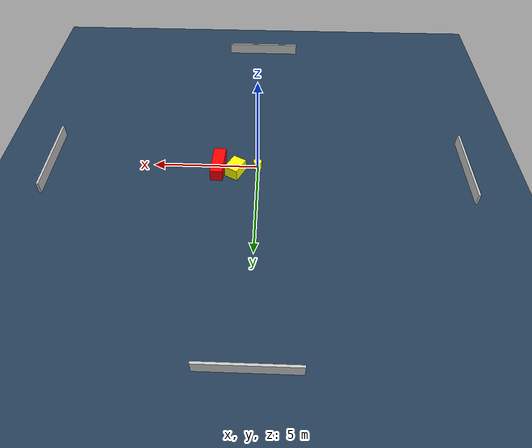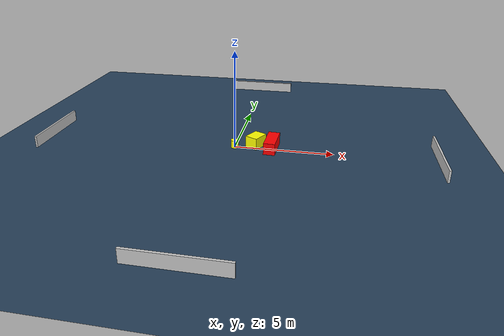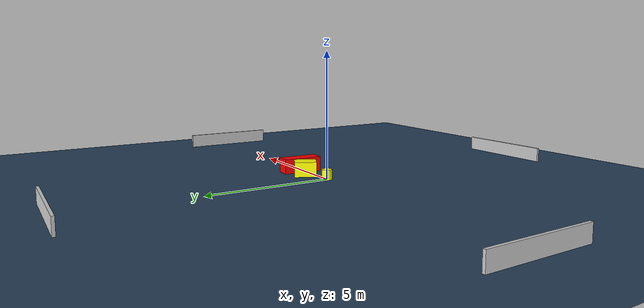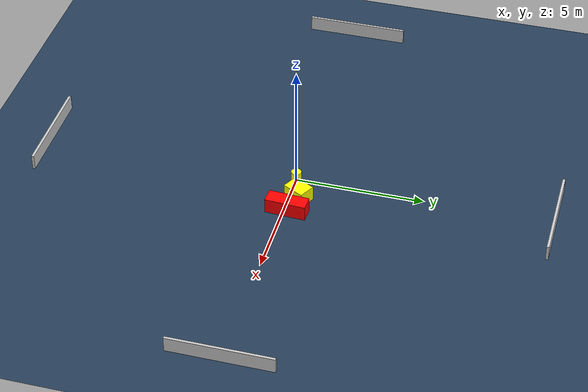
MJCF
<?xml version="1.0" ?>
<mujoco model="generated_environment">
  <option timestep="0.01" integrator="RK4" cone="elliptic"/>
  <default>
    <geom density="1"/>
  </default>
  <asset>
    <texture builtin="gradient" height="3072" name="skybox" rgb1="0.3 0.5 0.7" rgb2="0 0 0" type="skybox" width="512"/>
    <texture builtin="checker" height="300" name="groundplane" rgb1="0.2 0.3 0.4" rgb2="0.1 0.2 0.3" type="2d" width="300"/>
    <material name="groundplane" reflectance="0.2" texrepeat="5 5" texture="groundplane"/>
  </asset>
  <worldbody>
    <light dir="0 0 -1" directional="true" pos="0 0 1.5"/>
    <geom condim="3" friction="0.5 0.005 0.001" material="groundplane" name="floor" pos="0 0 0" size="0 0 0.05" type="plane"/>
    <body name="walls">
      <geom name="wall_1" condim="4" pos="-10.0 0.0 0.3" rgba="0.800000011920929 0.800000011920929 0.800000011920929 1.0" size="0.05 2.0 0.3" type="box"/>
      <geom name="wall_2" condim="4" pos="10.0 0.0 0.3" rgba="0.800000011920929 0.800000011920929 0.800000011920929 1.0" size="0.05 2.0 0.3" type="box"/>
      <geom name="wall_3" condim="4" pos="0.0 -10.0 0.3" rgba="0.800000011920929 0.800000011920929 0.800000011920929 1.0" size="2.0 0.05 0.3" type="box"/>
      <geom name="wall_4" condim="4" pos="0.0 10.0 0.3" rgba="0.800000011920929 0.800000011920929 0.800000011920929 1.0" size="2.0 0.05 0.3" type="box"/>
    </body>
    <body name="robot">
      <joint name="joint_x" type="slide" pos="0 0 0" axis="1 0 0"/>
      <joint name="joint_y" type="slide" pos="0 0 0" axis="0 1 0"/>
      <geom name="robot" type="cylinder" pos="0.0 0.0 0.2" size="0.2 0.2 0.0" mass="5.0" friction="1.0 0.005 0.0001" condim="4" rgba="1.0 1.0 0.0 1.0"/>
    </body>
    <body name="obstacle_1_movable">
      <geom name="obstacle_1_movable" condim="4" pos="1.047550351873457 0.3717108585612895 0.3" euler="0 0 241.97777825058313" friction="0.0 0.005 0.001" rgba="1.0 1.0 0.0 1.0" size="0.4395526868435424 0.33201712170196207 0.3" type="box" mass="0.1"/>
      <joint type="free"/>
    </body>
    <body name="obstacle_2_static">
      <geom name="obstacle_2_static" condim="4" pos="1.8855396322788902 0.14724161509499276 0.3" euler="0 0 176.9399175031439" friction="0.0 0.005 0.001" rgba="1.0 0.0 0.0 1.0" size="0.29255762608873237 0.7898838034463325 0.3" type="box"/>
    </body>
  </worldbody>
  <actuator>
    <motor name="actuator_x" joint="joint_x" gear="1" ctrlrange="-1 1"/>
    <motor name="actuator_y" joint="joint_y" gear="1" ctrlrange="-1 1"/>
  </actuator>
</mujoco>
